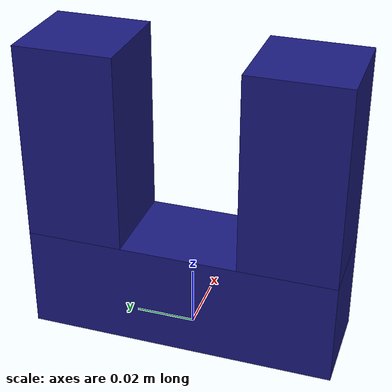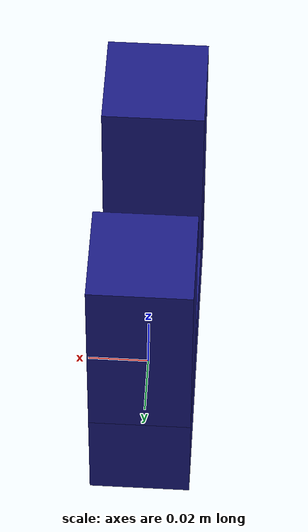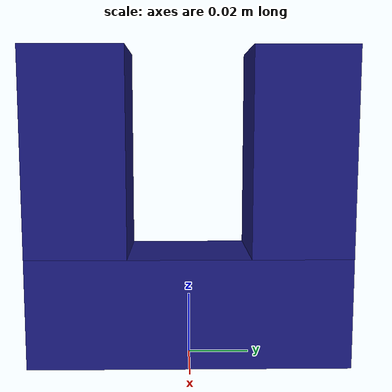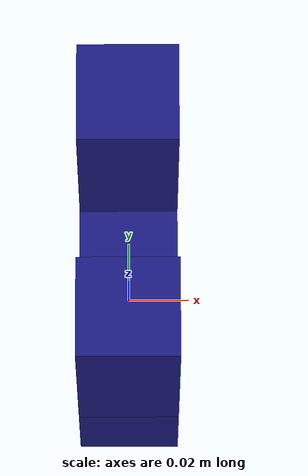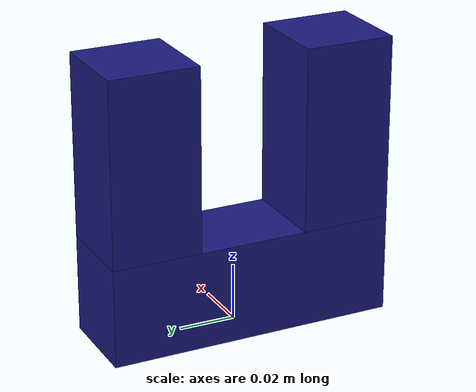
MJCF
<mujoco model="peg_v1_2">

  <compiler angle="radian" autolimits="true" inertiafromgeom="true"/>

  <default>
    <default class="peg_v1_2">
      <default class="vis">
        <geom contype="0" conaffinity="0" group="2" density="0" material="peg_v1_2_mat"/>
      </default>
      <default class="col">
        <geom contype="1" conaffinity="1" group="3" priority="0"
              friction="0.3 0.02 0.001" solref="0.002 1" solimp="0.995 0.995 0.0001"
              condim="6" rgba="0.1 0.1 0.5 0.5"/>
      </default>
    </default>
  </default>

  <asset><material name="peg_v1_2_mat" rgba="0.1 0.1 0.5 1.0"/></asset>

  <worldbody>
    <body name="peg_v1_2" pos="0 0 0" childclass="peg_v1_2">
      <freejoint name="peg_v1_2_joint"/>
      <geom name="peg_v1_2_vis_base" type="box" class="vis" pos="0.000000 0.000000 0.017500" size="0.016000 0.051000 0.017500"/>
      <geom name="peg_v1_2_vis_upright_neg" type="box" class="vis" pos="0.000000 -0.035125 0.067500" size="0.016000 0.015875 0.032500"/>
      <geom name="peg_v1_2_vis_upright_pos" type="box" class="vis" pos="0.000000 0.035125 0.067500" size="0.016000 0.015875 0.032500"/>
      <geom name="peg_v1_2_col_base" type="box" class="col" pos="0.000000 0.000000 0.017500" size="0.016000 0.051000 0.017500"/>
      <geom name="peg_v1_2_col_upright_neg" type="box" class="col" pos="0.000000 -0.035125 0.067500" size="0.016000 0.015875 0.032500"/>
      <geom name="peg_v1_2_col_upright_pos" type="box" class="col" pos="0.000000 0.035125 0.067500" size="0.016000 0.015875 0.032500"/>
    </body>
  </worldbody>
</mujoco>
